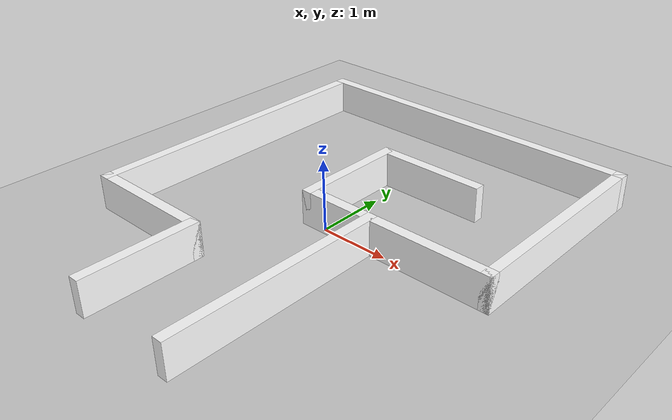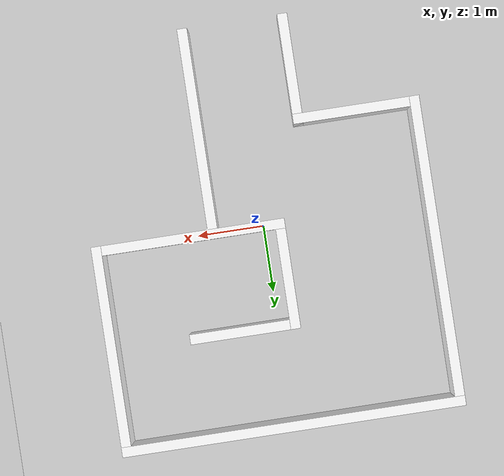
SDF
<sdf version="1.9">
 <world name="task14">
  <plugin filename="gz-sim-physics-system" name="gz::sim::systems::Physics"/>
  <plugin filename="gz-sim-user-commands-system" name="gz::sim::systems::UserCommands"/>
  <plugin filename="gz-sim-scene-broadcaster-system" name="gz::sim::systems::SceneBroadcaster"/>
  <light name="sun" type="directional"><pose>0 0 10 0 0 0</pose></light>
  <model name="ground">
   <static>true</static>
   <link name="link">
    <collision name="collision">
     <geometry><plane><normal>0 0 1</normal><size>20 20</size></plane></geometry>
    </collision>
    <visual name="visual"><geometry><plane><normal>0 0 1</normal><size>20 20</size></plane></geometry></visual>
   </link>
  </model>
  <model name="top_wall">
   <static>true</static>
   <pose>0 3 0.25 0 0 0</pose>
   <link name="link">
    <collision name="collision"><geometry><box><size>5.15 0.15 0.5</size></box></geometry></collision>
    <visual name="visual">
     <geometry><box><size>5.15 0.15 0.5</size></box></geometry>
     <material><ambient>1 1 1 1</ambient><diffuse>1 1 1 1</diffuse></material>
    </visual>
   </link>
  </model>
  <model name="left_outer_wall">
   <static>true</static>
   <pose>-2.5 0.75 0.25 0 0 0</pose>
   <link name="link">
    <collision name="collision"><geometry><box><size>0.15 4.65 0.5</size></box></geometry></collision>
    <visual name="visual">
     <geometry><box><size>0.15 4.65 0.5</size></box></geometry>
     <material><ambient>1 1 1 1</ambient><diffuse>1 1 1 1</diffuse></material>
    </visual>
   </link>
  </model>
  <model name="left_step_horizontal">
   <static>true</static>
   <pose>-1.625 -1.5 0.25 0 0 0</pose>
   <link name="link">
    <collision name="collision"><geometry><box><size>1.9 0.15 0.5</size></box></geometry></collision>
    <visual name="visual">
     <geometry><box><size>1.9 0.15 0.5</size></box></geometry>
     <material><ambient>1 1 1 1</ambient><diffuse>1 1 1 1</diffuse></material>
    </visual>
   </link>
  </model>
  <model name="left_step_vertical">
   <static>true</static>
   <pose>-0.75 -2.25 0.25 0 0 0</pose>
   <link name="link">
    <collision name="collision"><geometry><box><size>0.15 1.65 0.5</size></box></geometry></collision>
    <visual name="visual">
     <geometry><box><size>0.15 1.65 0.5</size></box></geometry>
     <material><ambient>1 1 1 1</ambient><diffuse>1 1 1 1</diffuse></material>
    </visual>
   </link>
  </model>
  <model name="right_outer_wall">
   <static>true</static>
   <pose>2.5 1.5 0.25 0 0 0</pose>
   <link name="link">
    <collision name="collision"><geometry><box><size>0.15 3.15 0.5</size></box></geometry></collision>
    <visual name="visual">
     <geometry><box><size>0.15 3.15 0.5</size></box></geometry>
     <material><ambient>1 1 1 1</ambient><diffuse>1 1 1 1</diffuse></material>
    </visual>
   </link>
  </model>
  <model name="right_main_horizontal">
   <static>true</static>
   <pose>1.125 0 0.25 0 0 0</pose>
   <link name="link">
    <collision name="collision"><geometry><box><size>2.9 0.15 0.5</size></box></geometry></collision>
    <visual name="visual">
     <geometry><box><size>2.9 0.15 0.5</size></box></geometry>
     <material><ambient>1 1 1 1</ambient><diffuse>1 1 1 1</diffuse></material>
    </visual>
   </link>
  </model>
  <model name="right_channel_vertical">
   <static>true</static>
   <pose>0.75 -1.5 0.25 0 0 0</pose>
   <link name="link">
    <collision name="collision"><geometry><box><size>0.15 3.15 0.5</size></box></geometry></collision>
    <visual name="visual">
     <geometry><box><size>0.15 3.15 0.5</size></box></geometry>
     <material><ambient>1 1 1 1</ambient><diffuse>1 1 1 1</diffuse></material>
    </visual>
   </link>
  </model>
  <model name="inner_spiral_vertical">
   <static>true</static>
   <pose>-0.25 0.75 0.25 0 0 0</pose>
   <link name="link">
    <collision name="collision"><geometry><box><size>0.15 1.65 0.5</size></box></geometry></collision>
    <visual name="visual">
     <geometry><box><size>0.15 1.65 0.5</size></box></geometry>
     <material><ambient>1 1 1 1</ambient><diffuse>1 1 1 1</diffuse></material>
    </visual>
   </link>
  </model>
  <model name="inner_spiral_horizontal">
   <static>true</static>
   <pose>0.5 1.5 0.25 0 0 0</pose>
   <link name="link">
    <collision name="collision"><geometry><box><size>1.65 0.15 0.5</size></box></geometry></collision>
    <visual name="visual">
     <geometry><box><size>1.65 0.15 0.5</size></box></geometry>
     <material><ambient>1 1 1 1</ambient><diffuse>1 1 1 1</diffuse></material>
    </visual>
   </link>
  </model>
 </world>
</sdf>
